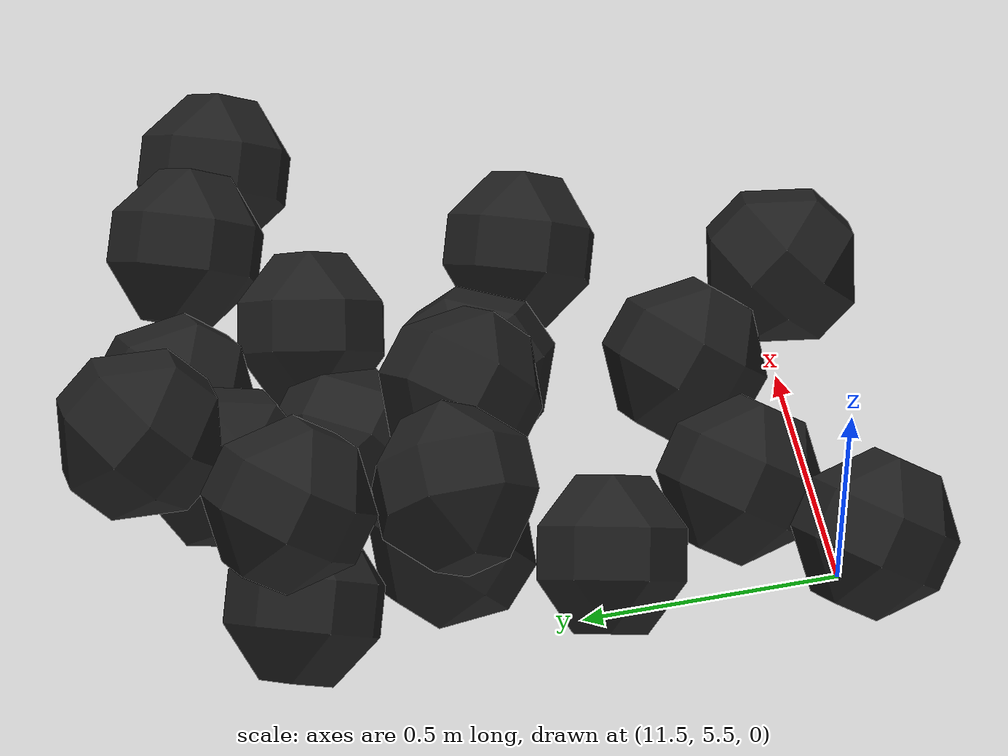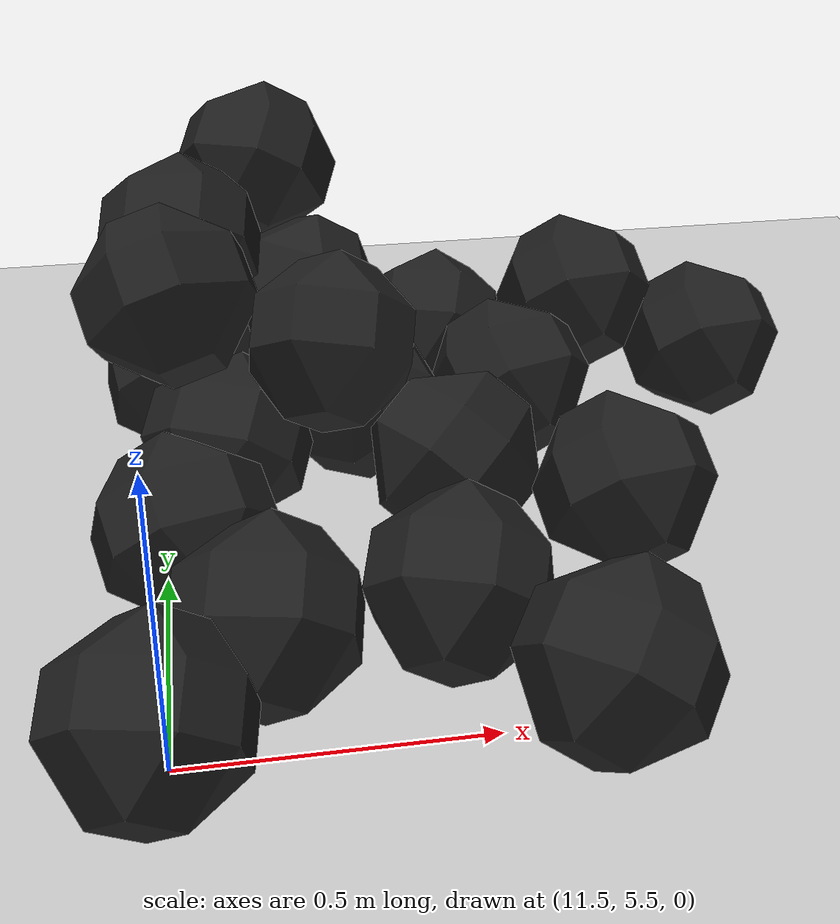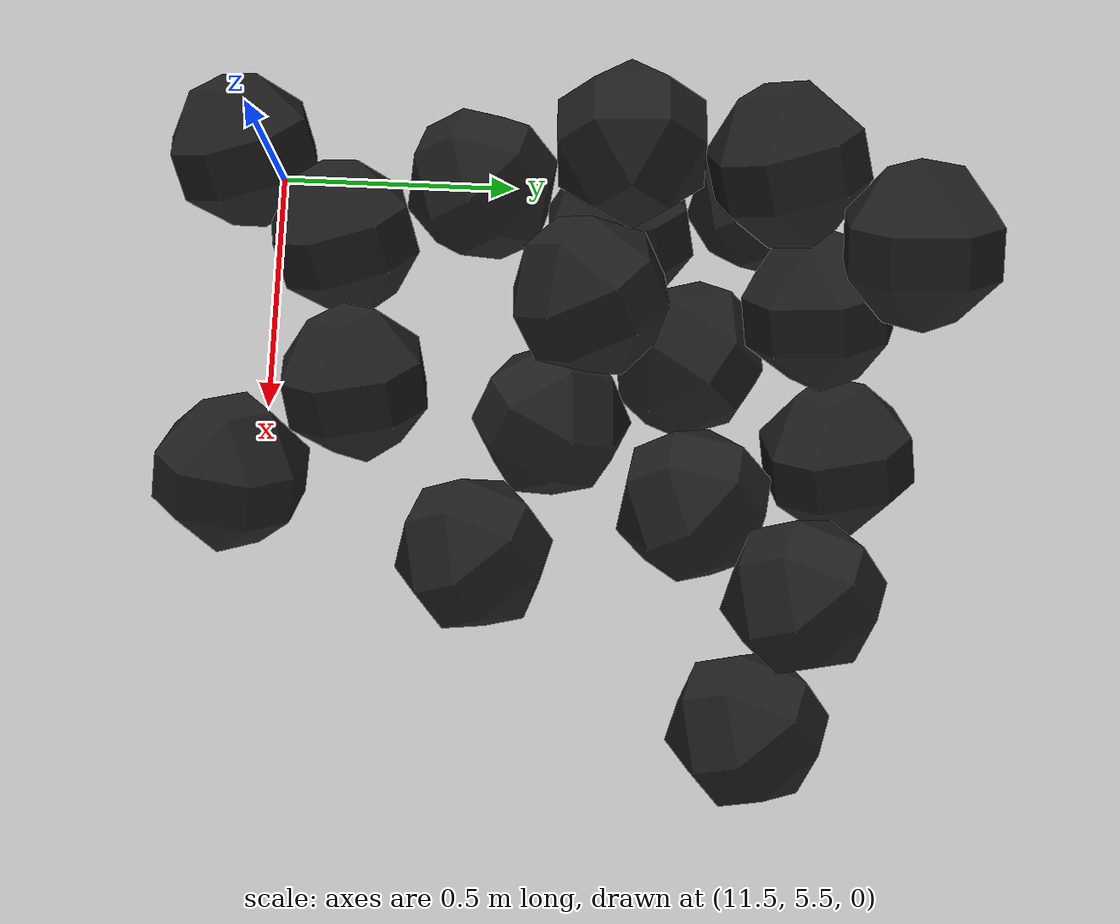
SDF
<sdf version="1.7">
 <world name="default">
  <model name="ground_plane">
   <static>1</static>
   <link name="link">
    <collision name="collision">
     <geometry><plane><normal>0 0 1</normal><size>100 100</size></plane></geometry>
     <surface><friction><ode><mu>100</mu><mu2>50</mu2></ode></friction></surface>
    </collision>
    <visual name="visual">
     <cast_shadows>0</cast_shadows>
     <geometry><plane><normal>0 0 1</normal><size>100 100</size></plane></geometry>
     <material>
      <script><uri>file://media/materials/scripts/gazebo.material</uri><name>Gazebo/Grey</name></script>
     </material>
    </visual>
   </link>
  </model>
  <model name="haoduomiantiaa_3">
   <link name="link_0">
    <inertial>
     <mass>0.2</mass>
     <inertia>
      <ixx>0.166667</ixx>
      <ixy>0</ixy>
      <ixz>0</ixz>
      <iyy>0.166667</iyy>
      <iyz>0</iyz>
      <izz>0.166667</izz>
     </inertia>
    </inertial>
    <visual name="visual">
     <geometry>
      <mesh>
       <uri>/home/lihaoyang/catkin_ws/src/pudong_gazebo/world/stl/haoduomianti.stl</uri>
       <scale>1 1 1</scale>
      </mesh>
     </geometry>
     <material>
      <lighting>1</lighting>
      <script><uri>file://media/materials/scripts/gazebo.material</uri><name>Gazebo/Black</name></script>
      <shader type="pixel"><normal_map>__default__</normal_map></shader>
      <ambient>0.3 0.3 0.3 1</ambient>
      <diffuse>0.7 0.7 0.7 1</diffuse>
      <specular>0.01 0.01 0.01 1</specular>
      <emissive>0 0 0 1</emissive>
     </material>
    </visual>
    <collision name="collision">
     <geometry>
      <mesh>
       <uri>/home/lihaoyang/catkin_ws/src/pudong_gazebo/world/stl/haoduomianti.stl</uri>
       <scale>1 1 1</scale>
      </mesh>
     </geometry>
     <surface>
      <friction>
       <ode><mu>1</mu><mu2>1</mu2><fdir1>0 0 0</fdir1><slip1>0</slip1><slip2>0</slip2></ode>
       <torsional>
        <coefficient>1</coefficient>
        <patch_radius>0</patch_radius>
        <surface_radius>0</surface_radius>
        <use_patch_radius>1</use_patch_radius>
        <ode><slip>0</slip></ode>
       </torsional>
      </friction>
      <bounce><restitution_coefficient>0</restitution_coefficient><threshold>1e+06</threshold></bounce>
      <contact>
       <collide_without_contact>0</collide_without_contact>
       <collide_without_contact_bitmask>1</collide_without_contact_bitmask>
       <collide_bitmask>1</collide_bitmask>
       <ode>
        <soft_cfm>0</soft_cfm>
        <soft_erp>0.2</soft_erp>
        <kp>1e+13</kp>
        <kd>1</kd>
        <max_vel>0.01</max_vel>
        <min_depth>0</min_depth>
       </ode>
       <bullet>
        <split_impulse>1</split_impulse>
        <split_impulse_penetration_threshold>-0.01</split_impulse_penetration_threshold>
        <soft_cfm>0</soft_cfm>
        <soft_erp>0.2</soft_erp>
        <kp>1e+13</kp>
        <kd>1</kd>
       </bullet>
      </contact>
     </surface>
    </collision>
   </link>
   <static>0</static>
   <pose>11.7624 6.4566 -0.0718 0.013817 -0.785294 -2.13645</pose>
  </model>
  <model name="haoduomiantiaa_8">
   <link name="link_0">
    <inertial>
     <mass>0.2</mass>
     <inertia>
      <ixx>0.166667</ixx>
      <ixy>0</ixy>
      <ixz>0</ixz>
      <iyy>0.166667</iyy>
      <iyz>0</iyz>
      <izz>0.166667</izz>
     </inertia>
    </inertial>
    <visual name="visual">
     <geometry>
      <mesh>
       <uri>/home/lihaoyang/catkin_ws/src/pudong_gazebo/world/stl/haoduomianti.stl</uri>
       <scale>1 1 1</scale>
      </mesh>
     </geometry>
     <material>
      <lighting>1</lighting>
      <script><uri>file://media/materials/scripts/gazebo.material</uri><name>Gazebo/Black</name></script>
      <shader type="pixel"><normal_map>__default__</normal_map></shader>
      <ambient>0.3 0.3 0.3 1</ambient>
      <diffuse>0.7 0.7 0.7 1</diffuse>
      <specular>0.01 0.01 0.01 1</specular>
      <emissive>0 0 0 1</emissive>
     </material>
    </visual>
    <collision name="collision">
     <geometry>
      <mesh>
       <uri>/home/lihaoyang/catkin_ws/src/pudong_gazebo/world/stl/haoduomianti.stl</uri>
       <scale>1 1 1</scale>
      </mesh>
     </geometry>
     <surface>
      <friction>
       <ode><mu>1</mu><mu2>1</mu2><fdir1>0 0 0</fdir1><slip1>0</slip1><slip2>0</slip2></ode>
       <torsional>
        <coefficient>1</coefficient>
        <patch_radius>0</patch_radius>
        <surface_radius>0</surface_radius>
        <use_patch_radius>1</use_patch_radius>
        <ode><slip>0</slip></ode>
       </torsional>
      </friction>
      <bounce><restitution_coefficient>0</restitution_coefficient><threshold>1e+06</threshold></bounce>
      <contact>
       <collide_without_contact>0</collide_without_contact>
       <collide_without_contact_bitmask>1</collide_without_contact_bitmask>
       <collide_bitmask>1</collide_bitmask>
       <ode>
        <soft_cfm>0</soft_cfm>
        <soft_erp>0.2</soft_erp>
        <kp>1e+13</kp>
        <kd>1</kd>
        <max_vel>0.01</max_vel>
        <min_depth>0</min_depth>
       </ode>
       <bullet>
        <split_impulse>1</split_impulse>
        <split_impulse_penetration_threshold>-0.01</split_impulse_penetration_threshold>
        <soft_cfm>0</soft_cfm>
        <soft_erp>0.2</soft_erp>
        <kp>1e+13</kp>
        <kd>1</kd>
       </bullet>
      </contact>
     </surface>
    </collision>
   </link>
   <static>0</static>
   <pose>11.5378 5.93785 -0.11548 0.785211 -0.615561 -2.31813</pose>
  </model>
  <model name="haoduomiantiaa_14">
   <link name="link_0">
    <inertial>
     <mass>0.2</mass>
     <inertia>
      <ixx>0.166667</ixx>
      <ixy>0</ixy>
      <ixz>0</ixz>
      <iyy>0.166667</iyy>
      <iyz>0</iyz>
      <izz>0.166667</izz>
     </inertia>
    </inertial>
    <visual name="visual">
     <geometry>
      <mesh>
       <uri>/home/lihaoyang/catkin_ws/src/pudong_gazebo/world/stl/haoduomianti.stl</uri>
       <scale>1 1 1</scale>
      </mesh>
     </geometry>
     <material>
      <lighting>1</lighting>
      <script><uri>file://media/materials/scripts/gazebo.material</uri><name>Gazebo/Black</name></script>
      <shader type="pixel"><normal_map>__default__</normal_map></shader>
      <ambient>0.3 0.3 0.3 1</ambient>
      <diffuse>0.7 0.7 0.7 1</diffuse>
      <specular>0.01 0.01 0.01 1</specular>
      <emissive>0 0 0 1</emissive>
     </material>
    </visual>
    <collision name="collision">
     <geometry>
      <mesh>
       <uri>/home/lihaoyang/catkin_ws/src/pudong_gazebo/world/stl/haoduomianti.stl</uri>
       <scale>1 1 1</scale>
      </mesh>
     </geometry>
     <surface>
      <friction>
       <ode><mu>1</mu><mu2>1</mu2><fdir1>0 0 0</fdir1><slip1>0</slip1><slip2>0</slip2></ode>
       <torsional>
        <coefficient>1</coefficient>
        <patch_radius>0</patch_radius>
        <surface_radius>0</surface_radius>
        <use_patch_radius>1</use_patch_radius>
        <ode><slip>0</slip></ode>
       </torsional>
      </friction>
      <bounce><restitution_coefficient>0</restitution_coefficient><threshold>1e+06</threshold></bounce>
      <contact>
       <collide_without_contact>0</collide_without_contact>
       <collide_without_contact_bitmask>1</collide_without_contact_bitmask>
       <collide_bitmask>1</collide_bitmask>
       <ode>
        <soft_cfm>0</soft_cfm>
        <soft_erp>0.2</soft_erp>
        <kp>1e+13</kp>
        <kd>1</kd>
        <max_vel>0.01</max_vel>
        <min_depth>0</min_depth>
       </ode>
       <bullet>
        <split_impulse>1</split_impulse>
        <split_impulse_penetration_threshold>-0.01</split_impulse_penetration_threshold>
        <soft_cfm>0</soft_cfm>
        <soft_erp>0.2</soft_erp>
        <kp>1e+13</kp>
        <kd>1</kd>
       </bullet>
      </contact>
     </surface>
    </collision>
   </link>
   <static>0</static>
   <pose>11.544 6.52741 -0.115389 0.790452 -0.617806 -0.328369</pose>
  </model>
  <model name="haoduomiantiaa_16">
   <link name="link_0">
    <inertial>
     <mass>0.2</mass>
     <inertia>
      <ixx>0.166667</ixx>
      <ixy>0</ixy>
      <ixz>0</ixz>
      <iyy>0.166667</iyy>
      <iyz>0</iyz>
      <izz>0.166667</izz>
     </inertia>
    </inertial>
    <visual name="visual">
     <geometry>
      <mesh>
       <uri>/home/lihaoyang/catkin_ws/src/pudong_gazebo/world/stl/haoduomianti.stl</uri>
       <scale>1 1 1</scale>
      </mesh>
     </geometry>
     <material>
      <lighting>1</lighting>
      <script><uri>file://media/materials/scripts/gazebo.material</uri><name>Gazebo/Black</name></script>
      <shader type="pixel"><normal_map>__default__</normal_map></shader>
      <ambient>0.3 0.3 0.3 1</ambient>
      <diffuse>0.7 0.7 0.7 1</diffuse>
      <specular>0.01 0.01 0.01 1</specular>
      <emissive>0 0 0 1</emissive>
     </material>
    </visual>
    <collision name="collision">
     <geometry>
      <mesh>
       <uri>/home/lihaoyang/catkin_ws/src/pudong_gazebo/world/stl/haoduomianti.stl</uri>
       <scale>1 1 1</scale>
      </mesh>
     </geometry>
     <surface>
      <friction>
       <ode><mu>1</mu><mu2>1</mu2><fdir1>0 0 0</fdir1><slip1>0</slip1><slip2>0</slip2></ode>
       <torsional>
        <coefficient>1</coefficient>
        <patch_radius>0</patch_radius>
        <surface_radius>0</surface_radius>
        <use_patch_radius>1</use_patch_radius>
        <ode><slip>0</slip></ode>
       </torsional>
      </friction>
      <bounce><restitution_coefficient>0</restitution_coefficient><threshold>1e+06</threshold></bounce>
      <contact>
       <collide_without_contact>0</collide_without_contact>
       <collide_without_contact_bitmask>1</collide_without_contact_bitmask>
       <collide_bitmask>1</collide_bitmask>
       <ode>
        <soft_cfm>0</soft_cfm>
        <soft_erp>0.2</soft_erp>
        <kp>1e+13</kp>
        <kd>1</kd>
        <max_vel>0.01</max_vel>
        <min_depth>0</min_depth>
       </ode>
       <bullet>
        <split_impulse>1</split_impulse>
        <split_impulse_penetration_threshold>-0.01</split_impulse_penetration_threshold>
        <soft_cfm>0</soft_cfm>
        <soft_erp>0.2</soft_erp>
        <kp>1e+13</kp>
        <kd>1</kd>
       </bullet>
      </contact>
     </surface>
    </collision>
   </link>
   <static>0</static>
   <pose>11.8076 6.7051 0.015419 0.432405 -0.565696 -2.96343</pose>
  </model>
  <model name="haoduomiantiaa_22">
   <link name="link_0">
    <inertial>
     <mass>0.2</mass>
     <inertia>
      <ixx>0.166667</ixx>
      <ixy>0</ixy>
      <ixz>0</ixz>
      <iyy>0.166667</iyy>
      <iyz>0</iyz>
      <izz>0.166667</izz>
     </inertia>
    </inertial>
    <visual name="visual">
     <geometry>
      <mesh>
       <uri>/home/lihaoyang/catkin_ws/src/pudong_gazebo/world/stl/haoduomianti.stl</uri>
       <scale>1 1 1</scale>
      </mesh>
     </geometry>
     <material>
      <lighting>1</lighting>
      <script><uri>file://media/materials/scripts/gazebo.material</uri><name>Gazebo/Black</name></script>
      <shader type="pixel"><normal_map>__default__</normal_map></shader>
      <ambient>0.3 0.3 0.3 1</ambient>
      <diffuse>0.7 0.7 0.7 1</diffuse>
      <specular>0.01 0.01 0.01 1</specular>
      <emissive>0 0 0 1</emissive>
     </material>
    </visual>
    <collision name="collision">
     <geometry>
      <mesh>
       <uri>/home/lihaoyang/catkin_ws/src/pudong_gazebo/world/stl/haoduomianti.stl</uri>
       <scale>1 1 1</scale>
      </mesh>
     </geometry>
     <surface>
      <friction>
       <ode><mu>1</mu><mu2>1</mu2><fdir1>0 0 0</fdir1><slip1>0</slip1><slip2>0</slip2></ode>
       <torsional>
        <coefficient>1</coefficient>
        <patch_radius>0</patch_radius>
        <surface_radius>0</surface_radius>
        <use_patch_radius>1</use_patch_radius>
        <ode><slip>0</slip></ode>
       </torsional>
      </friction>
      <bounce><restitution_coefficient>0</restitution_coefficient><threshold>1e+06</threshold></bounce>
      <contact>
       <collide_without_contact>0</collide_without_contact>
       <collide_without_contact_bitmask>1</collide_without_contact_bitmask>
       <collide_bitmask>1</collide_bitmask>
       <ode>
        <soft_cfm>0</soft_cfm>
        <soft_erp>0.2</soft_erp>
        <kp>1e+13</kp>
        <kd>1</kd>
        <max_vel>0.01</max_vel>
        <min_depth>0</min_depth>
       </ode>
       <bullet>
        <split_impulse>1</split_impulse>
        <split_impulse_penetration_threshold>-0.01</split_impulse_penetration_threshold>
        <soft_cfm>0</soft_cfm>
        <soft_erp>0.2</soft_erp>
        <kp>1e+13</kp>
        <kd>1</kd>
       </bullet>
      </contact>
     </surface>
    </collision>
   </link>
   <static>0</static>
   <pose>12.0783 6.68547 -0.11563 0.785361 -0.615454 -0.833935</pose>
  </model>
  <model name="haoduomiantiaa_40">
   <link name="link_0">
    <inertial>
     <mass>0.2</mass>
     <inertia>
      <ixx>0.166667</ixx>
      <ixy>0</ixy>
      <ixz>0</ixz>
      <iyy>0.166667</iyy>
      <iyz>0</iyz>
      <izz>0.166667</izz>
     </inertia>
    </inertial>
    <visual name="visual">
     <geometry>
      <mesh>
       <uri>/home/lihaoyang/catkin_ws/src/pudong_gazebo/world/stl/haoduomianti.stl</uri>
       <scale>1 1 1</scale>
      </mesh>
     </geometry>
     <material>
      <lighting>1</lighting>
      <script><uri>file://media/materials/scripts/gazebo.material</uri><name>Gazebo/Black</name></script>
      <shader type="pixel"><normal_map>__default__</normal_map></shader>
      <ambient>0.3 0.3 0.3 1</ambient>
      <diffuse>0.7 0.7 0.7 1</diffuse>
      <specular>0.01 0.01 0.01 1</specular>
      <emissive>0 0 0 1</emissive>
     </material>
    </visual>
    <collision name="collision">
     <geometry>
      <mesh>
       <uri>/home/lihaoyang/catkin_ws/src/pudong_gazebo/world/stl/haoduomianti.stl</uri>
       <scale>1 1 1</scale>
      </mesh>
     </geometry>
     <surface>
      <friction>
       <ode><mu>1</mu><mu2>1</mu2><fdir1>0 0 0</fdir1><slip1>0</slip1><slip2>0</slip2></ode>
       <torsional>
        <coefficient>1</coefficient>
        <patch_radius>0</patch_radius>
        <surface_radius>0</surface_radius>
        <use_patch_radius>1</use_patch_radius>
        <ode><slip>0</slip></ode>
       </torsional>
      </friction>
      <bounce><restitution_coefficient>0</restitution_coefficient><threshold>1e+06</threshold></bounce>
      <contact>
       <collide_without_contact>0</collide_without_contact>
       <collide_without_contact_bitmask>1</collide_without_contact_bitmask>
       <collide_bitmask>1</collide_bitmask>
       <ode>
        <soft_cfm>0</soft_cfm>
        <soft_erp>0.2</soft_erp>
        <kp>1e+13</kp>
        <kd>1</kd>
        <max_vel>0.01</max_vel>
        <min_depth>0</min_depth>
       </ode>
       <bullet>
        <split_impulse>1</split_impulse>
        <split_impulse_penetration_threshold>-0.01</split_impulse_penetration_threshold>
        <soft_cfm>0</soft_cfm>
        <soft_erp>0.2</soft_erp>
        <kp>1e+13</kp>
        <kd>1</kd>
       </bullet>
      </contact>
     </surface>
    </collision>
   </link>
   <static>0</static>
   <pose>12.6269 6.5189 -0.114752 0.785413 -0.597719 -0.336288</pose>
  </model>
  <model name="haoduomiantiaa_42">
   <link name="link_0">
    <inertial>
     <mass>0.2</mass>
     <inertia>
      <ixx>0.166667</ixx>
      <ixy>0</ixy>
      <ixz>0</ixz>
      <iyy>0.166667</iyy>
      <iyz>0</iyz>
      <izz>0.166667</izz>
     </inertia>
    </inertial>
    <visual name="visual">
     <geometry>
      <mesh>
       <uri>/home/lihaoyang/catkin_ws/src/pudong_gazebo/world/stl/haoduomianti.stl</uri>
       <scale>1 1 1</scale>
      </mesh>
     </geometry>
     <material>
      <lighting>1</lighting>
      <script><uri>file://media/materials/scripts/gazebo.material</uri><name>Gazebo/Black</name></script>
      <shader type="pixel"><normal_map>__default__</normal_map></shader>
      <ambient>0.3 0.3 0.3 1</ambient>
      <diffuse>0.7 0.7 0.7 1</diffuse>
      <specular>0.01 0.01 0.01 1</specular>
      <emissive>0 0 0 1</emissive>
     </material>
    </visual>
    <collision name="collision">
     <geometry>
      <mesh>
       <uri>/home/lihaoyang/catkin_ws/src/pudong_gazebo/world/stl/haoduomianti.stl</uri>
       <scale>1 1 1</scale>
      </mesh>
     </geometry>
     <surface>
      <friction>
       <ode><mu>1</mu><mu2>1</mu2><fdir1>0 0 0</fdir1><slip1>0</slip1><slip2>0</slip2></ode>
       <torsional>
        <coefficient>1</coefficient>
        <patch_radius>0</patch_radius>
        <surface_radius>0</surface_radius>
        <use_patch_radius>1</use_patch_radius>
        <ode><slip>0</slip></ode>
       </torsional>
      </friction>
      <bounce><restitution_coefficient>0</restitution_coefficient><threshold>1e+06</threshold></bounce>
      <contact>
       <collide_without_contact>0</collide_without_contact>
       <collide_without_contact_bitmask>1</collide_without_contact_bitmask>
       <collide_bitmask>1</collide_bitmask>
       <ode>
        <soft_cfm>0</soft_cfm>
        <soft_erp>0.2</soft_erp>
        <kp>1e+13</kp>
        <kd>1</kd>
        <max_vel>0.01</max_vel>
        <min_depth>0</min_depth>
       </ode>
       <bullet>
        <split_impulse>1</split_impulse>
        <split_impulse_penetration_threshold>-0.01</split_impulse_penetration_threshold>
        <soft_cfm>0</soft_cfm>
        <soft_erp>0.2</soft_erp>
        <kp>1e+13</kp>
        <kd>1</kd>
       </bullet>
      </contact>
     </surface>
    </collision>
   </link>
   <static>0</static>
   <pose>11.9673 5.6974 -0.11548 0.785401 -0.615482 1.2441</pose>
  </model>
  <model name="haoduomiantiaa_48">
   <link name="link_0">
    <inertial>
     <mass>0.2</mass>
     <inertia>
      <ixx>0.166667</ixx>
      <ixy>0</ixy>
      <ixz>0</ixz>
      <iyy>0.166667</iyy>
      <iyz>0</iyz>
      <izz>0.166667</izz>
     </inertia>
    </inertial>
    <visual name="visual">
     <geometry>
      <mesh>
       <uri>/home/lihaoyang/catkin_ws/src/pudong_gazebo/world/stl/haoduomianti.stl</uri>
       <scale>1 1 1</scale>
      </mesh>
     </geometry>
     <material>
      <lighting>1</lighting>
      <script><uri>file://media/materials/scripts/gazebo.material</uri><name>Gazebo/Black</name></script>
      <shader type="pixel"><normal_map>__default__</normal_map></shader>
      <ambient>0.3 0.3 0.3 1</ambient>
      <diffuse>0.7 0.7 0.7 1</diffuse>
      <specular>0.01 0.01 0.01 1</specular>
      <emissive>0 0 0 1</emissive>
     </material>
    </visual>
    <collision name="collision">
     <geometry>
      <mesh>
       <uri>/home/lihaoyang/catkin_ws/src/pudong_gazebo/world/stl/haoduomianti.stl</uri>
       <scale>1 1 1</scale>
      </mesh>
     </geometry>
     <surface>
      <friction>
       <ode><mu>1</mu><mu2>1</mu2><fdir1>0 0 0</fdir1><slip1>0</slip1><slip2>0</slip2></ode>
       <torsional>
        <coefficient>1</coefficient>
        <patch_radius>0</patch_radius>
        <surface_radius>0</surface_radius>
        <use_patch_radius>1</use_patch_radius>
        <ode><slip>0</slip></ode>
       </torsional>
      </friction>
      <bounce><restitution_coefficient>0</restitution_coefficient><threshold>1e+06</threshold></bounce>
      <contact>
       <collide_without_contact>0</collide_without_contact>
       <collide_without_contact_bitmask>1</collide_without_contact_bitmask>
       <collide_bitmask>1</collide_bitmask>
       <ode>
        <soft_cfm>0</soft_cfm>
        <soft_erp>0.2</soft_erp>
        <kp>1e+13</kp>
        <kd>1</kd>
        <max_vel>0.01</max_vel>
        <min_depth>0</min_depth>
       </ode>
       <bullet>
        <split_impulse>1</split_impulse>
        <split_impulse_penetration_threshold>-0.01</split_impulse_penetration_threshold>
        <soft_cfm>0</soft_cfm>
        <soft_erp>0.2</soft_erp>
        <kp>1e+13</kp>
        <kd>1</kd>
       </bullet>
      </contact>
     </surface>
    </collision>
   </link>
   <static>0</static>
   <pose>11.6613 5.65786 -0.115469 0.785397 -0.615447 -0.725317</pose>
  </model>
  <model name="haoduomiantiaa_61">
   <link name="link_0">
    <inertial>
     <mass>0.2</mass>
     <inertia>
      <ixx>0.166667</ixx>
      <ixy>0</ixy>
      <ixz>0</ixz>
      <iyy>0.166667</iyy>
      <iyz>0</iyz>
      <izz>0.166667</izz>
     </inertia>
    </inertial>
    <visual name="visual">
     <geometry>
      <mesh>
       <uri>/home/lihaoyang/catkin_ws/src/pudong_gazebo/world/stl/haoduomianti.stl</uri>
       <scale>1 1 1</scale>
      </mesh>
     </geometry>
     <material>
      <lighting>1</lighting>
      <script><uri>file://media/materials/scripts/gazebo.material</uri><name>Gazebo/Black</name></script>
      <shader type="pixel"><normal_map>__default__</normal_map></shader>
      <ambient>0.3 0.3 0.3 1</ambient>
      <diffuse>0.7 0.7 0.7 1</diffuse>
      <specular>0.01 0.01 0.01 1</specular>
      <emissive>0 0 0 1</emissive>
     </material>
    </visual>
    <collision name="collision">
     <geometry>
      <mesh>
       <uri>/home/lihaoyang/catkin_ws/src/pudong_gazebo/world/stl/haoduomianti.stl</uri>
       <scale>1 1 1</scale>
      </mesh>
     </geometry>
     <surface>
      <friction>
       <ode><mu>1</mu><mu2>1</mu2><fdir1>0 0 0</fdir1><slip1>0</slip1><slip2>0</slip2></ode>
       <torsional>
        <coefficient>1</coefficient>
        <patch_radius>0</patch_radius>
        <surface_radius>0</surface_radius>
        <use_patch_radius>1</use_patch_radius>
        <ode><slip>0</slip></ode>
       </torsional>
      </friction>
      <bounce><restitution_coefficient>0</restitution_coefficient><threshold>1e+06</threshold></bounce>
      <contact>
       <collide_without_contact>0</collide_without_contact>
       <collide_without_contact_bitmask>1</collide_without_contact_bitmask>
       <collide_bitmask>1</collide_bitmask>
       <ode>
        <soft_cfm>0</soft_cfm>
        <soft_erp>0.2</soft_erp>
        <kp>1e+13</kp>
        <kd>1</kd>
        <max_vel>0.01</max_vel>
        <min_depth>0</min_depth>
       </ode>
       <bullet>
        <split_impulse>1</split_impulse>
        <split_impulse_penetration_threshold>-0.01</split_impulse_penetration_threshold>
        <soft_cfm>0</soft_cfm>
        <soft_erp>0.2</soft_erp>
        <kp>1e+13</kp>
        <kd>1</kd>
       </bullet>
      </contact>
     </surface>
    </collision>
   </link>
   <static>0</static>
   <pose>12.0294 6.10461 -0.115468 0.785447 -0.615489 0.56603</pose>
  </model>
  <model name="haoduomiantiaa_66">
   <link name="link_0">
    <inertial>
     <mass>0.2</mass>
     <inertia>
      <ixx>0.166667</ixx>
      <ixy>0</ixy>
      <ixz>0</ixz>
      <iyy>0.166667</iyy>
      <iyz>0</iyz>
      <izz>0.166667</izz>
     </inertia>
    </inertial>
    <visual name="visual">
     <geometry>
      <mesh>
       <uri>/home/lihaoyang/catkin_ws/src/pudong_gazebo/world/stl/haoduomianti.stl</uri>
       <scale>1 1 1</scale>
      </mesh>
     </geometry>
     <material>
      <lighting>1</lighting>
      <script><uri>file://media/materials/scripts/gazebo.material</uri><name>Gazebo/Black</name></script>
      <shader type="pixel"><normal_map>__default__</normal_map></shader>
      <ambient>0.3 0.3 0.3 1</ambient>
      <diffuse>0.7 0.7 0.7 1</diffuse>
      <specular>0.01 0.01 0.01 1</specular>
      <emissive>0 0 0 1</emissive>
     </material>
    </visual>
    <collision name="collision">
     <geometry>
      <mesh>
       <uri>/home/lihaoyang/catkin_ws/src/pudong_gazebo/world/stl/haoduomianti.stl</uri>
       <scale>1 1 1</scale>
      </mesh>
     </geometry>
     <surface>
      <friction>
       <ode><mu>1</mu><mu2>1</mu2><fdir1>0 0 0</fdir1><slip1>0</slip1><slip2>0</slip2></ode>
       <torsional>
        <coefficient>1</coefficient>
        <patch_radius>0</patch_radius>
        <surface_radius>0</surface_radius>
        <use_patch_radius>1</use_patch_radius>
        <ode><slip>0</slip></ode>
       </torsional>
      </friction>
      <bounce><restitution_coefficient>0</restitution_coefficient><threshold>1e+06</threshold></bounce>
      <contact>
       <collide_without_contact>0</collide_without_contact>
       <collide_without_contact_bitmask>1</collide_without_contact_bitmask>
       <collide_bitmask>1</collide_bitmask>
       <ode>
        <soft_cfm>0</soft_cfm>
        <soft_erp>0.2</soft_erp>
        <kp>1e+13</kp>
        <kd>1</kd>
        <max_vel>0.01</max_vel>
        <min_depth>0</min_depth>
       </ode>
       <bullet>
        <split_impulse>1</split_impulse>
        <split_impulse_penetration_threshold>-0.01</split_impulse_penetration_threshold>
        <soft_cfm>0</soft_cfm>
        <soft_erp>0.2</soft_erp>
        <kp>1e+13</kp>
        <kd>1</kd>
       </bullet>
      </contact>
     </surface>
    </collision>
   </link>
   <static>0</static>
   <pose>12.308 5.9577 -0.115479 0.785399 -0.615488 -2.42985</pose>
  </model>
  <model name="haoduomiantiaa_79">
   <link name="link_0">
    <inertial>
     <mass>0.2</mass>
     <inertia>
      <ixx>0.166667</ixx>
      <ixy>0</ixy>
      <ixz>0</ixz>
      <iyy>0.166667</iyy>
      <iyz>0</iyz>
      <izz>0.166667</izz>
     </inertia>
    </inertial>
    <visual name="visual">
     <geometry>
      <mesh>
       <uri>/home/lihaoyang/catkin_ws/src/pudong_gazebo/world/stl/haoduomianti.stl</uri>
       <scale>1 1 1</scale>
      </mesh>
     </geometry>
     <material>
      <lighting>1</lighting>
      <script><uri>file://media/materials/scripts/gazebo.material</uri><name>Gazebo/Black</name></script>
      <shader type="pixel"><normal_map>__default__</normal_map></shader>
      <ambient>0.3 0.3 0.3 1</ambient>
      <diffuse>0.7 0.7 0.7 1</diffuse>
      <specular>0.01 0.01 0.01 1</specular>
      <emissive>0 0 0 1</emissive>
     </material>
    </visual>
    <collision name="collision">
     <geometry>
      <mesh>
       <uri>/home/lihaoyang/catkin_ws/src/pudong_gazebo/world/stl/haoduomianti.stl</uri>
       <scale>1 1 1</scale>
      </mesh>
     </geometry>
     <surface>
      <friction>
       <ode><mu>1</mu><mu2>1</mu2><fdir1>0 0 0</fdir1><slip1>0</slip1><slip2>0</slip2></ode>
       <torsional>
        <coefficient>1</coefficient>
        <patch_radius>0</patch_radius>
        <surface_radius>0</surface_radius>
        <use_patch_radius>1</use_patch_radius>
        <ode><slip>0</slip></ode>
       </torsional>
      </friction>
      <bounce><restitution_coefficient>0</restitution_coefficient><threshold>1e+06</threshold></bounce>
      <contact>
       <collide_without_contact>0</collide_without_contact>
       <collide_without_contact_bitmask>1</collide_without_contact_bitmask>
       <collide_bitmask>1</collide_bitmask>
       <ode>
        <soft_cfm>0</soft_cfm>
        <soft_erp>0.2</soft_erp>
        <kp>1e+13</kp>
        <kd>1</kd>
        <max_vel>0.01</max_vel>
        <min_depth>0</min_depth>
       </ode>
       <bullet>
        <split_impulse>1</split_impulse>
        <split_impulse_penetration_threshold>-0.01</split_impulse_penetration_threshold>
        <soft_cfm>0</soft_cfm>
        <soft_erp>0.2</soft_erp>
        <kp>1e+13</kp>
        <kd>1</kd>
       </bullet>
      </contact>
     </surface>
    </collision>
   </link>
   <static>0</static>
   <pose>11.5787 6.54698 0.176356 0.711441 -0.650381 1.40617</pose>
  </model>
  <model name="haoduomiantiaa_90">
   <link name="link_0">
    <inertial>
     <mass>0.2</mass>
     <inertia>
      <ixx>0.166667</ixx>
      <ixy>0</ixy>
      <ixz>0</ixz>
      <iyy>0.166667</iyy>
      <iyz>0</iyz>
      <izz>0.166667</izz>
     </inertia>
    </inertial>
    <visual name="visual">
     <geometry>
      <mesh>
       <uri>/home/lihaoyang/catkin_ws/src/pudong_gazebo/world/stl/haoduomianti.stl</uri>
       <scale>1 1 1</scale>
      </mesh>
     </geometry>
     <material>
      <lighting>1</lighting>
      <script><uri>file://media/materials/scripts/gazebo.material</uri><name>Gazebo/Black</name></script>
      <shader type="pixel"><normal_map>__default__</normal_map></shader>
      <ambient>0.3 0.3 0.3 1</ambient>
      <diffuse>0.7 0.7 0.7 1</diffuse>
      <specular>0.01 0.01 0.01 1</specular>
      <emissive>0 0 0 1</emissive>
     </material>
    </visual>
    <collision name="collision">
     <geometry>
      <mesh>
       <uri>/home/lihaoyang/catkin_ws/src/pudong_gazebo/world/stl/haoduomianti.stl</uri>
       <scale>1 1 1</scale>
      </mesh>
     </geometry>
     <surface>
      <friction>
       <ode><mu>1</mu><mu2>1</mu2><fdir1>0 0 0</fdir1><slip1>0</slip1><slip2>0</slip2></ode>
       <torsional>
        <coefficient>1</coefficient>
        <patch_radius>0</patch_radius>
        <surface_radius>0</surface_radius>
        <use_patch_radius>1</use_patch_radius>
        <ode><slip>0</slip></ode>
       </torsional>
      </friction>
      <bounce><restitution_coefficient>0</restitution_coefficient><threshold>1e+06</threshold></bounce>
      <contact>
       <collide_without_contact>0</collide_without_contact>
       <collide_without_contact_bitmask>1</collide_without_contact_bitmask>
       <collide_bitmask>1</collide_bitmask>
       <ode>
        <soft_cfm>0</soft_cfm>
        <soft_erp>0.2</soft_erp>
        <kp>1e+13</kp>
        <kd>1</kd>
        <max_vel>0.01</max_vel>
        <min_depth>0</min_depth>
       </ode>
       <bullet>
        <split_impulse>1</split_impulse>
        <split_impulse_penetration_threshold>-0.01</split_impulse_penetration_threshold>
        <soft_cfm>0</soft_cfm>
        <soft_erp>0.2</soft_erp>
        <kp>1e+13</kp>
        <kd>1</kd>
       </bullet>
      </contact>
     </surface>
    </collision>
   </link>
   <static>0</static>
   <pose>11.6072 6.24787 -0.111042 0.785375 -0.516241 -0.861247</pose>
  </model>
  <model name="haoduomiantiaa_103">
   <link name="link_0">
    <inertial>
     <mass>0.2</mass>
     <inertia>
      <ixx>0.166667</ixx>
      <ixy>0</ixy>
      <ixz>0</ixz>
      <iyy>0.166667</iyy>
      <iyz>0</iyz>
      <izz>0.166667</izz>
     </inertia>
    </inertial>
    <visual name="visual">
     <geometry>
      <mesh>
       <uri>/home/lihaoyang/catkin_ws/src/pudong_gazebo/world/stl/haoduomianti.stl</uri>
       <scale>1 1 1</scale>
      </mesh>
     </geometry>
     <material>
      <lighting>1</lighting>
      <script><uri>file://media/materials/scripts/gazebo.material</uri><name>Gazebo/Black</name></script>
      <shader type="pixel"><normal_map>__default__</normal_map></shader>
      <ambient>0.3 0.3 0.3 1</ambient>
      <diffuse>0.7 0.7 0.7 1</diffuse>
      <specular>0.01 0.01 0.01 1</specular>
      <emissive>0 0 0 1</emissive>
     </material>
    </visual>
    <collision name="collision">
     <geometry>
      <mesh>
       <uri>/home/lihaoyang/catkin_ws/src/pudong_gazebo/world/stl/haoduomianti.stl</uri>
       <scale>1 1 1</scale>
      </mesh>
     </geometry>
     <surface>
      <friction>
       <ode><mu>1</mu><mu2>1</mu2><fdir1>0 0 0</fdir1><slip1>0</slip1><slip2>0</slip2></ode>
       <torsional>
        <coefficient>1</coefficient>
        <patch_radius>0</patch_radius>
        <surface_radius>0</surface_radius>
        <use_patch_radius>1</use_patch_radius>
        <ode><slip>0</slip></ode>
       </torsional>
      </friction>
      <bounce><restitution_coefficient>0</restitution_coefficient><threshold>1e+06</threshold></bounce>
      <contact>
       <collide_without_contact>0</collide_without_contact>
       <collide_without_contact_bitmask>1</collide_without_contact_bitmask>
       <collide_bitmask>1</collide_bitmask>
       <ode>
        <soft_cfm>0</soft_cfm>
        <soft_erp>0.2</soft_erp>
        <kp>1e+13</kp>
        <kd>1</kd>
        <max_vel>0.01</max_vel>
        <min_depth>0</min_depth>
       </ode>
       <bullet>
        <split_impulse>1</split_impulse>
        <split_impulse_penetration_threshold>-0.01</split_impulse_penetration_threshold>
        <soft_cfm>0</soft_cfm>
        <soft_erp>0.2</soft_erp>
        <kp>1e+13</kp>
        <kd>1</kd>
       </bullet>
      </contact>
     </surface>
    </collision>
   </link>
   <static>0</static>
   <pose>11.4603 6.24102 0.190889 1.11186 -0.753408 1.92108</pose>
  </model>
  <model name="haoduomiantiaa_105">
   <link name="link_0">
    <inertial>
     <mass>0.2</mass>
     <inertia>
      <ixx>0.166667</ixx>
      <ixy>0</ixy>
      <ixz>0</ixz>
      <iyy>0.166667</iyy>
      <iyz>0</iyz>
      <izz>0.166667</izz>
     </inertia>
    </inertial>
    <visual name="visual">
     <geometry>
      <mesh>
       <uri>/home/lihaoyang/catkin_ws/src/pudong_gazebo/world/stl/haoduomianti.stl</uri>
       <scale>1 1 1</scale>
      </mesh>
     </geometry>
     <material>
      <lighting>1</lighting>
      <script><uri>file://media/materials/scripts/gazebo.material</uri><name>Gazebo/Black</name></script>
      <shader type="pixel"><normal_map>__default__</normal_map></shader>
      <ambient>0.3 0.3 0.3 1</ambient>
      <diffuse>0.7 0.7 0.7 1</diffuse>
      <specular>0.01 0.01 0.01 1</specular>
      <emissive>0 0 0 1</emissive>
     </material>
    </visual>
    <collision name="collision">
     <geometry>
      <mesh>
       <uri>/home/lihaoyang/catkin_ws/src/pudong_gazebo/world/stl/haoduomianti.stl</uri>
       <scale>1 1 1</scale>
      </mesh>
     </geometry>
     <surface>
      <friction>
       <ode><mu>1</mu><mu2>1</mu2><fdir1>0 0 0</fdir1><slip1>0</slip1><slip2>0</slip2></ode>
       <torsional>
        <coefficient>1</coefficient>
        <patch_radius>0</patch_radius>
        <surface_radius>0</surface_radius>
        <use_patch_radius>1</use_patch_radius>
        <ode><slip>0</slip></ode>
       </torsional>
      </friction>
      <bounce><restitution_coefficient>0</restitution_coefficient><threshold>1e+06</threshold></bounce>
      <contact>
       <collide_without_contact>0</collide_without_contact>
       <collide_without_contact_bitmask>1</collide_without_contact_bitmask>
       <collide_bitmask>1</collide_bitmask>
       <ode>
        <soft_cfm>0</soft_cfm>
        <soft_erp>0.2</soft_erp>
        <kp>1e+13</kp>
        <kd>1</kd>
        <max_vel>0.01</max_vel>
        <min_depth>0</min_depth>
       </ode>
       <bullet>
        <split_impulse>1</split_impulse>
        <split_impulse_penetration_threshold>-0.01</split_impulse_penetration_threshold>
        <soft_cfm>0</soft_cfm>
        <soft_erp>0.2</soft_erp>
        <kp>1e+13</kp>
        <kd>1</kd>
       </bullet>
      </contact>
     </surface>
    </collision>
   </link>
   <static>0</static>
   <pose>12.3686 6.61836 -0.02717 0.798561 -0.639154 1.75123</pose>
  </model>
  <model name="haoduomiantiaa_108">
   <link name="link_0">
    <inertial>
     <mass>0.2</mass>
     <inertia>
      <ixx>0.166667</ixx>
      <ixy>0</ixy>
      <ixz>0</ixz>
      <iyy>0.166667</iyy>
      <iyz>0</iyz>
      <izz>0.166667</izz>
     </inertia>
    </inertial>
    <visual name="visual">
     <geometry>
      <mesh>
       <uri>/home/lihaoyang/catkin_ws/src/pudong_gazebo/world/stl/haoduomianti.stl</uri>
       <scale>1 1 1</scale>
      </mesh>
     </geometry>
     <material>
      <lighting>1</lighting>
      <script><uri>file://media/materials/scripts/gazebo.material</uri><name>Gazebo/Black</name></script>
      <shader type="pixel"><normal_map>__default__</normal_map></shader>
      <ambient>0.3 0.3 0.3 1</ambient>
      <diffuse>0.7 0.7 0.7 1</diffuse>
      <specular>0.01 0.01 0.01 1</specular>
      <emissive>0 0 0 1</emissive>
     </material>
    </visual>
    <collision name="collision">
     <geometry>
      <mesh>
       <uri>/home/lihaoyang/catkin_ws/src/pudong_gazebo/world/stl/haoduomianti.stl</uri>
       <scale>1 1 1</scale>
      </mesh>
     </geometry>
     <surface>
      <friction>
       <ode><mu>1</mu><mu2>1</mu2><fdir1>0 0 0</fdir1><slip1>0</slip1><slip2>0</slip2></ode>
       <torsional>
        <coefficient>1</coefficient>
        <patch_radius>0</patch_radius>
        <surface_radius>0</surface_radius>
        <use_patch_radius>1</use_patch_radius>
        <ode><slip>0</slip></ode>
       </torsional>
      </friction>
      <bounce><restitution_coefficient>0</restitution_coefficient><threshold>1e+06</threshold></bounce>
      <contact>
       <collide_without_contact>0</collide_without_contact>
       <collide_without_contact_bitmask>1</collide_without_contact_bitmask>
       <collide_bitmask>1</collide_bitmask>
       <ode>
        <soft_cfm>0</soft_cfm>
        <soft_erp>0.2</soft_erp>
        <kp>1e+13</kp>
        <kd>1</kd>
        <max_vel>0.01</max_vel>
        <min_depth>0</min_depth>
       </ode>
       <bullet>
        <split_impulse>1</split_impulse>
        <split_impulse_penetration_threshold>-0.01</split_impulse_penetration_threshold>
        <soft_cfm>0</soft_cfm>
        <soft_erp>0.2</soft_erp>
        <kp>1e+13</kp>
        <kd>1</kd>
       </bullet>
      </contact>
     </surface>
    </collision>
   </link>
   <static>0</static>
   <pose>11.751 6.80953 0.243167 0.927867 -0.587327 -1.10723</pose>
  </model>
  <model name="haoduomiantiaa_117">
   <link name="link_0">
    <inertial>
     <mass>0.2</mass>
     <inertia>
      <ixx>0.166667</ixx>
      <ixy>0</ixy>
      <ixz>0</ixz>
      <iyy>0.166667</iyy>
      <iyz>0</iyz>
      <izz>0.166667</izz>
     </inertia>
    </inertial>
    <visual name="visual">
     <geometry>
      <mesh>
       <uri>/home/lihaoyang/catkin_ws/src/pudong_gazebo/world/stl/haoduomianti.stl</uri>
       <scale>1 1 1</scale>
      </mesh>
     </geometry>
     <material>
      <lighting>1</lighting>
      <script><uri>file://media/materials/scripts/gazebo.material</uri><name>Gazebo/Black</name></script>
      <shader type="pixel"><normal_map>__default__</normal_map></shader>
      <ambient>0.3 0.3 0.3 1</ambient>
      <diffuse>0.7 0.7 0.7 1</diffuse>
      <specular>0.01 0.01 0.01 1</specular>
      <emissive>0 0 0 1</emissive>
     </material>
    </visual>
    <collision name="collision">
     <geometry>
      <mesh>
       <uri>/home/lihaoyang/catkin_ws/src/pudong_gazebo/world/stl/haoduomianti.stl</uri>
       <scale>1 1 1</scale>
      </mesh>
     </geometry>
     <surface>
      <friction>
       <ode><mu>1</mu><mu2>1</mu2><fdir1>0 0 0</fdir1><slip1>0</slip1><slip2>0</slip2></ode>
       <torsional>
        <coefficient>1</coefficient>
        <patch_radius>0</patch_radius>
        <surface_radius>0</surface_radius>
        <use_patch_radius>1</use_patch_radius>
        <ode><slip>0</slip></ode>
       </torsional>
      </friction>
      <bounce><restitution_coefficient>0</restitution_coefficient><threshold>1e+06</threshold></bounce>
      <contact>
       <collide_without_contact>0</collide_without_contact>
       <collide_without_contact_bitmask>1</collide_without_contact_bitmask>
       <collide_bitmask>1</collide_bitmask>
       <ode>
        <soft_cfm>0</soft_cfm>
        <soft_erp>0.2</soft_erp>
        <kp>1e+13</kp>
        <kd>1</kd>
        <max_vel>0.01</max_vel>
        <min_depth>0</min_depth>
       </ode>
       <bullet>
        <split_impulse>1</split_impulse>
        <split_impulse_penetration_threshold>-0.01</split_impulse_penetration_threshold>
        <soft_cfm>0</soft_cfm>
        <soft_erp>0.2</soft_erp>
        <kp>1e+13</kp>
        <kd>1</kd>
       </bullet>
      </contact>
     </surface>
    </collision>
   </link>
   <static>0</static>
   <pose>12.1894 6.398 -0.115475 0.785407 -0.615371 -0.185369</pose>
  </model>
  <model name="haoduomiantiaa_118">
   <link name="link_0">
    <inertial>
     <mass>0.2</mass>
     <inertia>
      <ixx>0.166667</ixx>
      <ixy>0</ixy>
      <ixz>0</ixz>
      <iyy>0.166667</iyy>
      <iyz>0</iyz>
      <izz>0.166667</izz>
     </inertia>
    </inertial>
    <visual name="visual">
     <geometry>
      <mesh>
       <uri>/home/lihaoyang/catkin_ws/src/pudong_gazebo/world/stl/haoduomianti.stl</uri>
       <scale>1 1 1</scale>
      </mesh>
     </geometry>
     <material>
      <lighting>1</lighting>
      <script><uri>file://media/materials/scripts/gazebo.material</uri><name>Gazebo/Black</name></script>
      <shader type="pixel"><normal_map>__default__</normal_map></shader>
      <ambient>0.3 0.3 0.3 1</ambient>
      <diffuse>0.7 0.7 0.7 1</diffuse>
      <specular>0.01 0.01 0.01 1</specular>
      <emissive>0 0 0 1</emissive>
     </material>
    </visual>
    <collision name="collision">
     <geometry>
      <mesh>
       <uri>/home/lihaoyang/catkin_ws/src/pudong_gazebo/world/stl/haoduomianti.stl</uri>
       <scale>1 1 1</scale>
      </mesh>
     </geometry>
     <surface>
      <friction>
       <ode><mu>1</mu><mu2>1</mu2><fdir1>0 0 0</fdir1><slip1>0</slip1><slip2>0</slip2></ode>
       <torsional>
        <coefficient>1</coefficient>
        <patch_radius>0</patch_radius>
        <surface_radius>0</surface_radius>
        <use_patch_radius>1</use_patch_radius>
        <ode><slip>0</slip></ode>
       </torsional>
      </friction>
      <bounce><restitution_coefficient>0</restitution_coefficient><threshold>1e+06</threshold></bounce>
      <contact>
       <collide_without_contact>0</collide_without_contact>
       <collide_without_contact_bitmask>1</collide_without_contact_bitmask>
       <collide_bitmask>1</collide_bitmask>
       <ode>
        <soft_cfm>0</soft_cfm>
        <soft_erp>0.2</soft_erp>
        <kp>1e+13</kp>
        <kd>1</kd>
        <max_vel>0.01</max_vel>
        <min_depth>0</min_depth>
       </ode>
       <bullet>
        <split_impulse>1</split_impulse>
        <split_impulse_penetration_threshold>-0.01</split_impulse_penetration_threshold>
        <soft_cfm>0</soft_cfm>
        <soft_erp>0.2</soft_erp>
        <kp>1e+13</kp>
        <kd>1</kd>
       </bullet>
      </contact>
     </surface>
    </collision>
   </link>
   <static>0</static>
   <pose>11.4842 5.43679 -0.11547 0.785397 -0.615478 1.36899</pose>
  </model>
  <model name="haoduomiantiaa_123">
   <link name="link_0">
    <inertial>
     <mass>0.2</mass>
     <inertia>
      <ixx>0.166667</ixx>
      <ixy>0</ixy>
      <ixz>0</ixz>
      <iyy>0.166667</iyy>
      <iyz>0</iyz>
      <izz>0.166667</izz>
     </inertia>
    </inertial>
    <visual name="visual">
     <geometry>
      <mesh>
       <uri>/home/lihaoyang/catkin_ws/src/pudong_gazebo/world/stl/haoduomianti.stl</uri>
       <scale>1 1 1</scale>
      </mesh>
     </geometry>
     <material>
      <lighting>1</lighting>
      <script><uri>file://media/materials/scripts/gazebo.material</uri><name>Gazebo/Black</name></script>
      <shader type="pixel"><normal_map>__default__</normal_map></shader>
      <ambient>0.3 0.3 0.3 1</ambient>
      <diffuse>0.7 0.7 0.7 1</diffuse>
      <specular>0.01 0.01 0.01 1</specular>
      <emissive>0 0 0 1</emissive>
     </material>
    </visual>
    <collision name="collision">
     <geometry>
      <mesh>
       <uri>/home/lihaoyang/catkin_ws/src/pudong_gazebo/world/stl/haoduomianti.stl</uri>
       <scale>1 1 1</scale>
      </mesh>
     </geometry>
     <surface>
      <friction>
       <ode><mu>1</mu><mu2>1</mu2><fdir1>0 0 0</fdir1><slip1>0</slip1><slip2>0</slip2></ode>
       <torsional>
        <coefficient>1</coefficient>
        <patch_radius>0</patch_radius>
        <surface_radius>0</surface_radius>
        <use_patch_radius>1</use_patch_radius>
        <ode><slip>0</slip></ode>
       </torsional>
      </friction>
      <bounce><restitution_coefficient>0</restitution_coefficient><threshold>1e+06</threshold></bounce>
      <contact>
       <collide_without_contact>0</collide_without_contact>
       <collide_without_contact_bitmask>1</collide_without_contact_bitmask>
       <collide_bitmask>1</collide_bitmask>
       <ode>
        <soft_cfm>0</soft_cfm>
        <soft_erp>0.2</soft_erp>
        <kp>1e+13</kp>
        <kd>1</kd>
        <max_vel>0.01</max_vel>
        <min_depth>0</min_depth>
       </ode>
       <bullet>
        <split_impulse>1</split_impulse>
        <split_impulse_penetration_threshold>-0.01</split_impulse_penetration_threshold>
        <soft_cfm>0</soft_cfm>
        <soft_erp>0.2</soft_erp>
        <kp>1e+13</kp>
        <kd>1</kd>
       </bullet>
      </contact>
     </surface>
    </collision>
   </link>
   <static>0</static>
   <pose>11.7915 6.22595 0.107134 0.902154 -0.40271 -0.715794</pose>
  </model>
  <model name="haoduomiantiaa_128">
   <link name="link_0">
    <inertial>
     <mass>0.2</mass>
     <inertia>
      <ixx>0.166667</ixx>
      <ixy>0</ixy>
      <ixz>0</ixz>
      <iyy>0.166667</iyy>
      <iyz>0</iyz>
      <izz>0.166667</izz>
     </inertia>
    </inertial>
    <visual name="visual">
     <geometry>
      <mesh>
       <uri>/home/lihaoyang/catkin_ws/src/pudong_gazebo/world/stl/haoduomianti.stl</uri>
       <scale>1 1 1</scale>
      </mesh>
     </geometry>
     <material>
      <lighting>1</lighting>
      <script><uri>file://media/materials/scripts/gazebo.material</uri><name>Gazebo/Black</name></script>
      <shader type="pixel"><normal_map>__default__</normal_map></shader>
      <ambient>0.3 0.3 0.3 1</ambient>
      <diffuse>0.7 0.7 0.7 1</diffuse>
      <specular>0.01 0.01 0.01 1</specular>
      <emissive>0 0 0 1</emissive>
     </material>
    </visual>
    <collision name="collision">
     <geometry>
      <mesh>
       <uri>/home/lihaoyang/catkin_ws/src/pudong_gazebo/world/stl/haoduomianti.stl</uri>
       <scale>1 1 1</scale>
      </mesh>
     </geometry>
     <surface>
      <friction>
       <ode><mu>1</mu><mu2>1</mu2><fdir1>0 0 0</fdir1><slip1>0</slip1><slip2>0</slip2></ode>
       <torsional>
        <coefficient>1</coefficient>
        <patch_radius>0</patch_radius>
        <surface_radius>0</surface_radius>
        <use_patch_radius>1</use_patch_radius>
        <ode><slip>0</slip></ode>
       </torsional>
      </friction>
      <bounce><restitution_coefficient>0</restitution_coefficient><threshold>1e+06</threshold></bounce>
      <contact>
       <collide_without_contact>0</collide_without_contact>
       <collide_without_contact_bitmask>1</collide_without_contact_bitmask>
       <collide_bitmask>1</collide_bitmask>
       <ode>
        <soft_cfm>0</soft_cfm>
        <soft_erp>0.2</soft_erp>
        <kp>1e+13</kp>
        <kd>1</kd>
        <max_vel>0.01</max_vel>
        <min_depth>0</min_depth>
       </ode>
       <bullet>
        <split_impulse>1</split_impulse>
        <split_impulse_penetration_threshold>-0.01</split_impulse_penetration_threshold>
        <soft_cfm>0</soft_cfm>
        <soft_erp>0.2</soft_erp>
        <kp>1e+13</kp>
        <kd>1</kd>
       </bullet>
      </contact>
     </surface>
    </collision>
   </link>
   <static>0</static>
   <pose>12.1633 5.45835 -0.11548 0.785401 -0.615481 -1.19423</pose>
  </model>
 </world>
</sdf>
